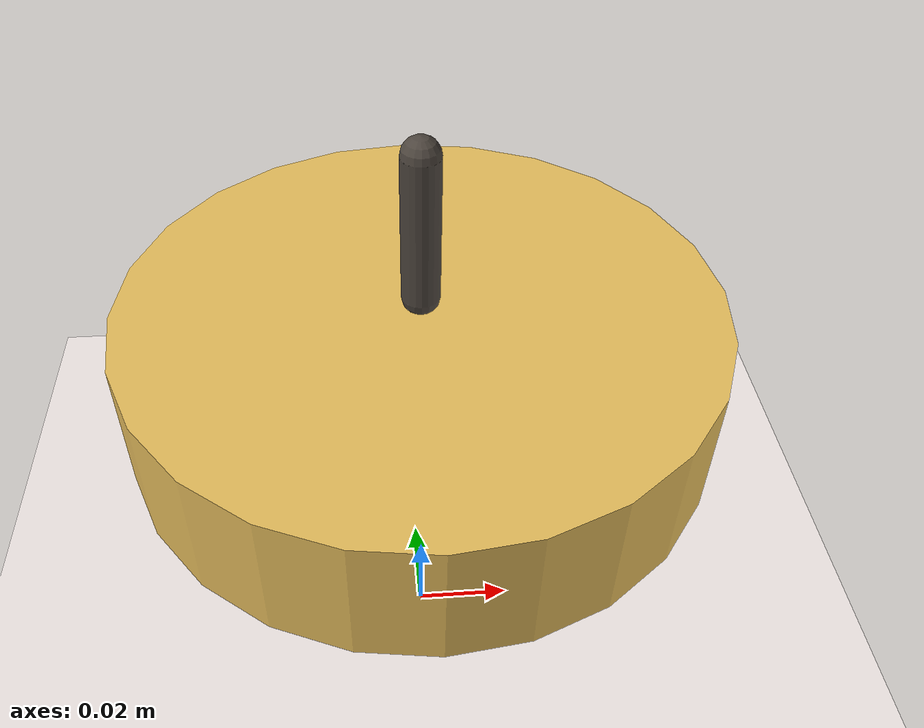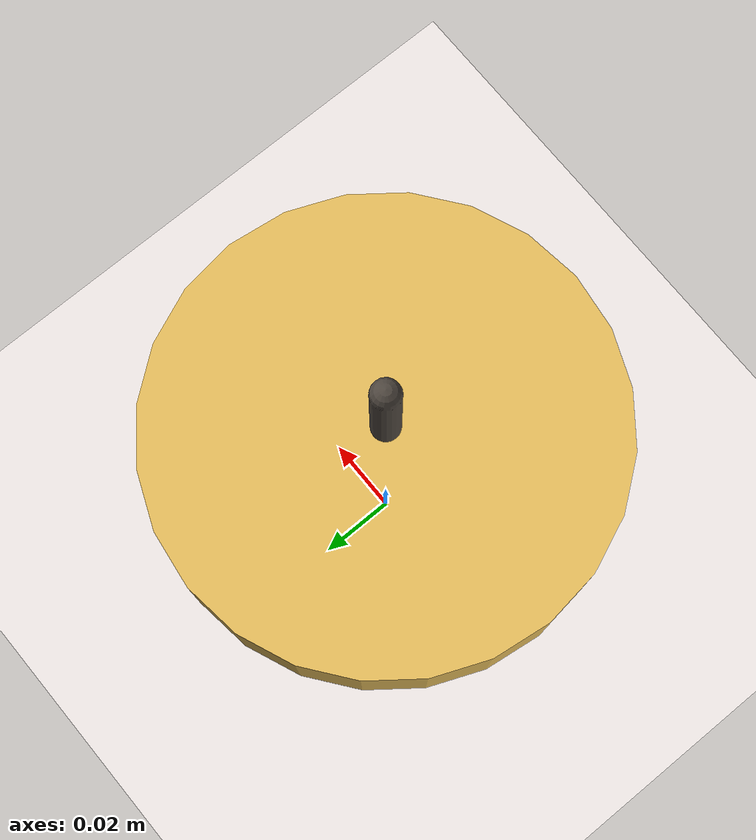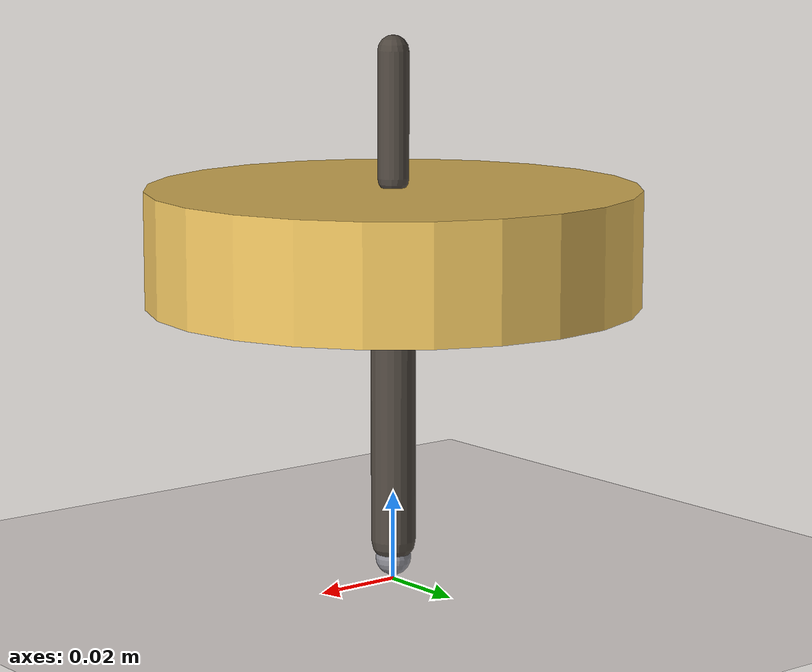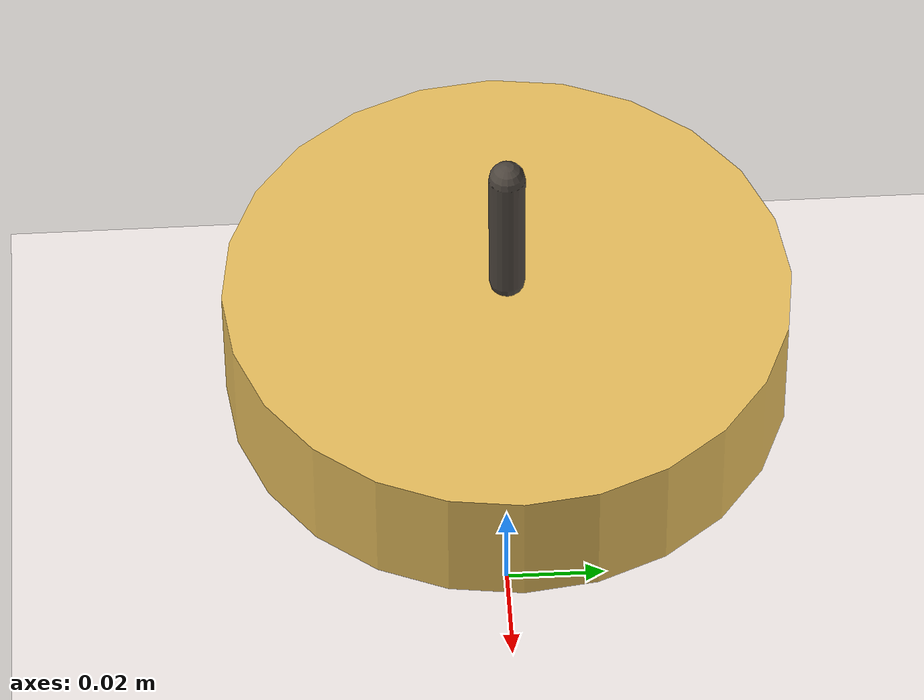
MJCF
<mujoco model="spinning_top">
  <compiler angle="radian" coordinate="local" autolimits="true"/>
  <option timestep="0.0005" gravity="0 0 -9.81" integrator="implicitfast"
          impratio="3" cone="elliptic"/>

  <visual>
    <headlight diffuse="0 0 0" ambient="0.50 0.48 0.55" specular="0 0 0"/>
    <rgba haze="0.94 0.91 0.90 1"/>
    <global azimuth="120" elevation="-15" offwidth="1920" offheight="1080" fovy="40"/>
    <quality shadowsize="8192" offsamples="8"/>
    <map shadowclip="6" shadowscale="0.7"/>
  </visual>

  <asset>
    <texture type="skybox" builtin="flat"
             rgb1="0.74 0.68 0.86" rgb2="0.74 0.68 0.86"
             width="512" height="512" mark="none" markrgb="0 0 0"/>

    <material name="floor_mat" rgba="0.94 0.91 0.90 1" specular="0" shininess="0"/>
    <material name="disc_brass" rgba="0.90 0.74 0.36 1" specular="0.7" shininess="0.85"/>
    <material name="disc_rim"   rgba="0.70 0.55 0.20 1" specular="0.7" shininess="0.85"/>
    <material name="stem_dark"  rgba="0.30 0.27 0.24 1" specular="0.5" shininess="0.6"/>
    <material name="tip_steel"  rgba="0.55 0.55 0.58 1" specular="0.7" shininess="0.8"/>
  </asset>

  <default>
    <!-- Very stiff contact at the tip so the top doesn't sink into the floor
         and precession isn't damped by squishy contact. -->
    <geom solref="0.001 1" solimp="0.99 0.999 0.0001"/>
  </default>

  <worldbody>
    <light pos="0 0 12" dir="-0.30 0.55 -1" directional="true" castshadow="true"
           diffuse="0.85 0.82 0.78" specular="0.15 0.15 0.15"/>
    <light pos="0 0 8" dir="0.40 -0.30 -1" directional="true" castshadow="false"
           diffuse="0.28 0.28 0.34" specular="0 0 0"/>

    <geom name="floor" type="plane" size="40 40 0.1" material="floor_mat"
          friction="0.6 0.05 0.001"/>

    <body name="top" pos="0 0 0.001">
      <joint name="top_free" type="free"/>

      <geom name="tip" type="sphere" pos="0 0 0.004" size="0.004"
            mass="0.002" material="tip_steel"
            friction="1.5 0.003 0.0005"/>

      <!-- Stem from tip up to the disc.  Disc center @ z=0.075 — high enough
           that the rim clears the floor up to ~30 deg nutation. -->
      <geom name="stem_lower" type="capsule" fromto="0 0 0.008  0 0 0.062"
            size="0.005" mass="0.005" material="stem_dark"
            contype="0" conaffinity="0"/>

      <!-- Disc: most of the polar moment.  Larger I_z helps stability. -->
      <geom name="disc" type="cylinder" pos="0 0 0.075" size="0.055 0.013"
            mass="0.080" material="disc_brass"
            contype="0" conaffinity="0"/>

      <!-- Crown stem above the disc. -->
      <geom name="crown" type="capsule" fromto="0 0 0.090  0 0 0.118"
            size="0.0035" mass="0.002" material="stem_dark"
            contype="0" conaffinity="0"/>
    </body>

    <!-- Camera: 3/4 view looking slightly down on the top, so we can see both
         the spin axis tilt and the precession sweep. -->
    <camera name="cam" pos="0.55 -0.75 0.22" fovy="36"
            xyaxes="0.806 0.592 0   -0.092 0.126 0.987"/>
  </worldbody>
</mujoco>
